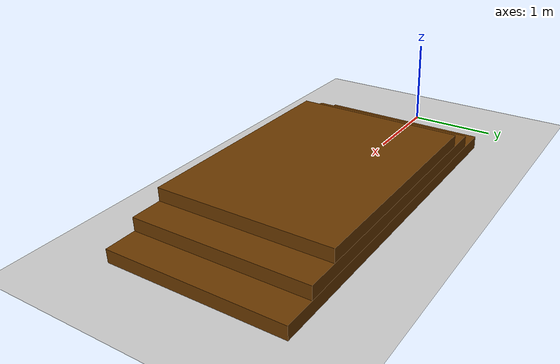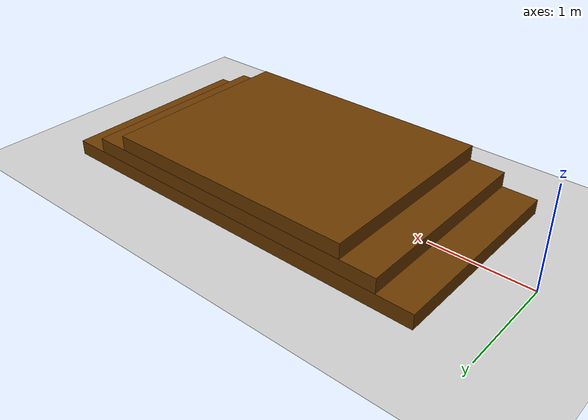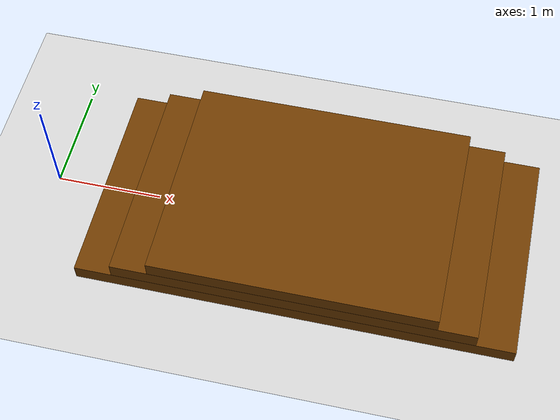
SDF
<?xml version="1.0" ?>
<sdf version="1.5">
    <world name="default">

        <physics type="ode">
        <max_step_size>0.001</max_step_size>
        <real_time_factor>1</real_time_factor>
        <real_time_update_rate>1000</real_time_update_rate>
        <gravity>0 0 -9.8</gravity>
            <ode>
                <solver>
                <type>quick</type>
                <iters>50</iters>
                <sor>1.3</sor>
                </solver>
                <constraints>
                <cfm>0.0</cfm>
                <erp>0.2</erp>
                <contact_max_correcting_vel>10.0</contact_max_correcting_vel>
                <contact_surface_layer>0.001</contact_surface_layer>
                </constraints>
            </ode>
        </physics>

        <scene>
        <sky>
            <clouds>
                <speed>12</speed>
            </clouds>
        </sky>
        </scene>
        <!-- A global light source -->
        <include>
            <uri>model://sun</uri>
        </include>
        <!-- A ground plane -->
        <include>
            <uri>model://ground_plane</uri>
        </include>
        <!-- environment blocks, obstacles or stairs -->
        <model name="static_environment">
        <static>true</static>
            <link name="step_1">
                <pose>2.5 0 0.075 0 0 0</pose>
                <collision name="step_1_collision">
                    <geometry>
                        <box>
                            <size>4 2 0.15</size>
                        </box>
                    </geometry>
                     <surface>
                        <friction>
                            <ode>
                                <mu>100</mu>
                                <mu2>50</mu2>
                            </ode>
                        </friction>
                    </surface>
                </collision>
                <visual name="step_1_visual">
                    <geometry>
                        <box>
                            <size>4 2 0.15</size>
                        </box>
                    </geometry>
                    <material>
                        <ambient>0.3 0.2 0.2 1.0</ambient>
                        <diffuse>.421 0.225 0.0 1.0</diffuse>
                    </material>
                </visual>
            </link>
            <link name="step_2">
                <pose>2.5 0 0.225 0 0 0</pose>
                <collision name="step_2_collision">
                    <geometry>
                        <box>
                            <size>3.3 2 0.15</size>
                        </box>
                    </geometry>
                     <surface>
                        <friction>
                            <ode>
                                <mu>100</mu>
                                <mu2>50</mu2>
                            </ode>
                        </friction>
                    </surface>
                </collision>
                <visual name="step_2_visual">
                    <geometry>
                        <box>
                            <size>3.3 2 0.15</size>
                        </box>
                    </geometry>
                    <material>
                        <ambient>0.2 0.2 0.2 1.0</ambient>
                        <diffuse>.421 0.225 0.0 1.0</diffuse>
                    </material>
                </visual>
            </link>
            <link name="step_3">
                <pose>2.5 0 0.375 0 0 0</pose>
                <collision name="step_3_collision">
                    <geometry>
                        <box>
                            <size>2.6 2 0.15</size>
                        </box>
                    </geometry>
                     <surface>
                        <friction>
                            <ode>
                                <mu>100</mu>
                                <mu2>50</mu2>
                            </ode>
                        </friction>
                    </surface>
                </collision>
                <visual name="step_3_visual">
                    <geometry>
                        <box>
                            <size>2.6 2 0.15</size>
                        </box>
                    </geometry>
                    <material>
                        <ambient>0.2 0.2 0.2 1.0</ambient>
                        <diffuse>.421 0.225 0.0 1.0</diffuse>
                    </material>
                </visual>
            </link>
        </model>

    </world>
</sdf>
